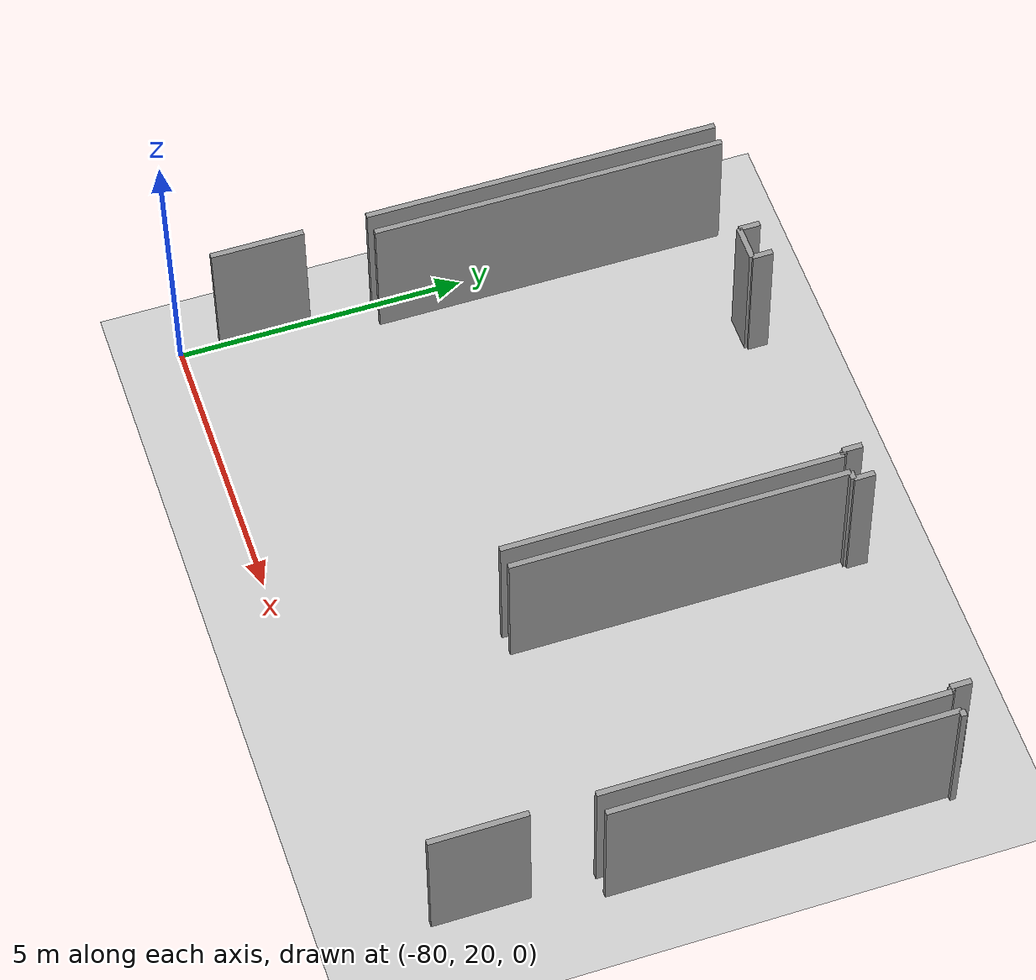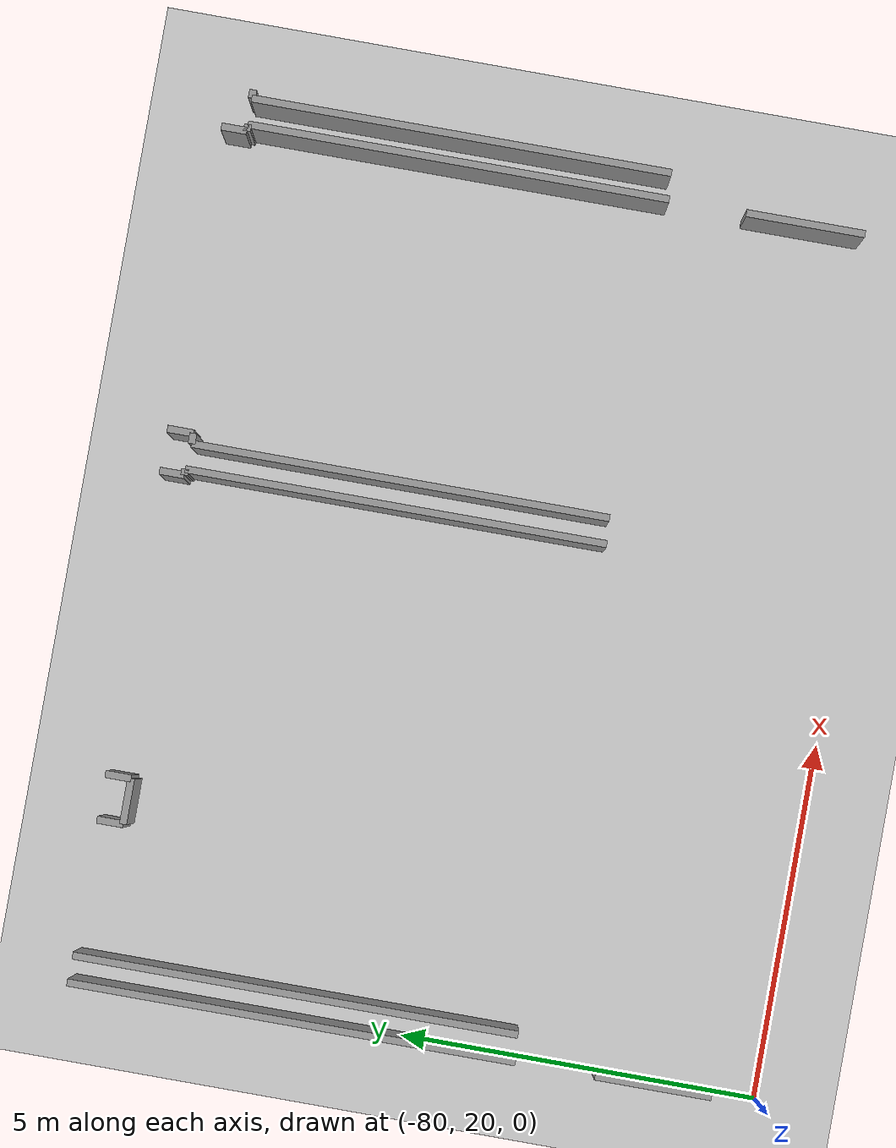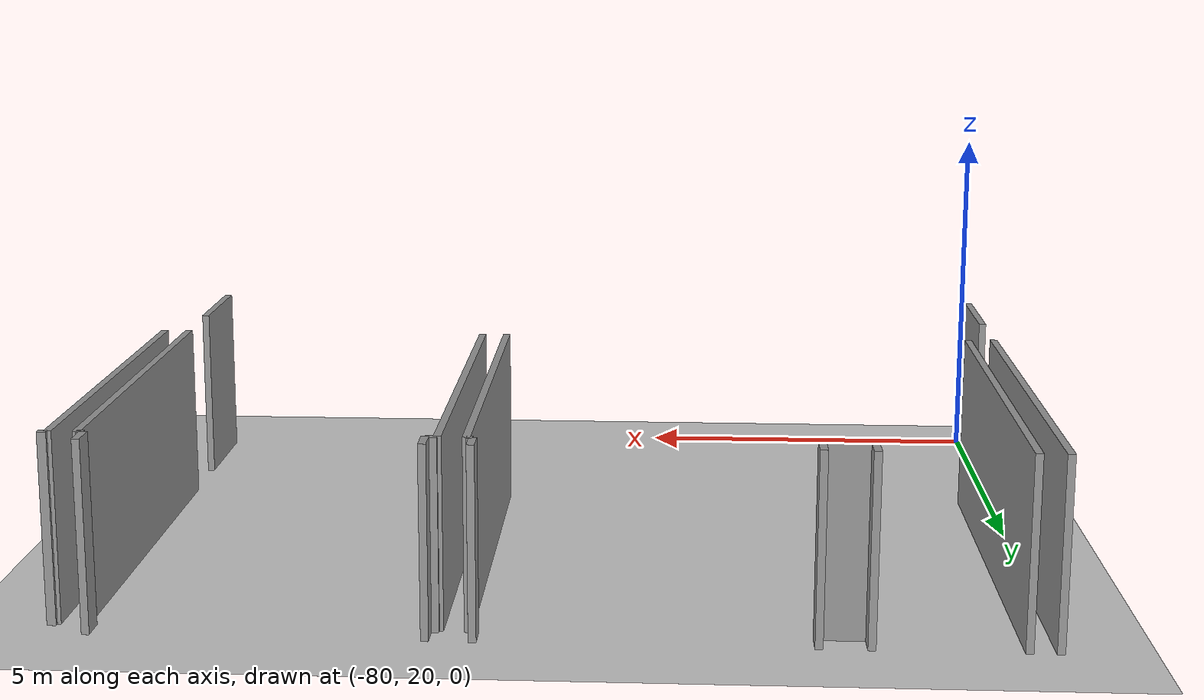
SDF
<sdf version="1.6">
 <world name="default">
  <model name="ground_plane">
   <static>1</static>
   <link name="link">
    <collision name="collision">
     <geometry><plane><normal>0 0 1</normal><size>100 100</size></plane></geometry>
     <surface><friction><ode><mu>100</mu><mu2>50</mu2></ode></friction></surface>
    </collision>
    <visual name="visual">
     <cast_shadows>0</cast_shadows>
     <geometry><plane><normal>0 0 1</normal><size>100 100</size></plane></geometry>
     <material>
      <script><uri>file://media/materials/scripts/gazebo.material</uri><name>Gazebo/Grey</name></script>
     </material>
    </visual>
   </link>
  </model>
  <model name="50010536_PLAN3">
   <static>1</static>
   <link name="Wall_25">
    <collision name="Wall_25_Collision">
     <geometry><box><size>6.22681014507 0.1 2.5</size></box></geometry>
     <pose>3.11340507253 0 1.25 0 0 0</pose>
    </collision>
    <visual name="Wall_25_Visual">
     <pose>3.11340507253 0 1.25 0 0 0</pose>
     <geometry><box><size>6.22681014507 0.1 2.5</size></box></geometry>
     <material>
      <script><uri>file://media/materials/scripts/gazebo.material</uri><name>Gazebo/Grey</name></script>
      <ambient>1 1 1 1</ambient>
     </material>
    </visual>
    <pose>22.5101101482 -0.0200107926229 0 0 0 -1.57079632679</pose>
   </link>
   <link name="Wall_26">
    <collision name="Wall_26_Collision">
     <geometry><box><size>1.61965527093 0.1 2.5</size></box></geometry>
     <pose>0.809827635463 0 1.25 0 0 0</pose>
    </collision>
    <visual name="Wall_26_Visual">
     <pose>0.809827635463 0 1.25 0 0 0</pose>
     <geometry><box><size>1.61965527093 0.1 2.5</size></box></geometry>
     <material>
      <script><uri>file://media/materials/scripts/gazebo.material</uri><name>Gazebo/Grey</name></script>
      <ambient>1 1 1 1</ambient>
     </material>
    </visual>
    <pose>22.5101101482 -7.35046186078 0 0 0 -1.57079632679</pose>
   </link>
   <link name="Wall_30">
    <collision name="Wall_30_Collision">
     <geometry><box><size>6.18871853474 0.1 2.5</size></box></geometry>
     <pose>3.09435926737 0 1.25 0 0 0</pose>
    </collision>
    <visual name="Wall_30_Visual">
     <pose>3.09435926737 0 1.25 0 0 0</pose>
     <geometry><box><size>6.18871853474 0.1 2.5</size></box></geometry>
     <material>
      <script><uri>file://media/materials/scripts/gazebo.material</uri><name>Gazebo/Grey</name></script>
      <ambient>1 1 1 1</ambient>
     </material>
    </visual>
    <pose>22.8846776497 -6.21761736977 0 0 0 1.57079632679</pose>
   </link>
   <link name="Wall_31">
    <collision name="Wall_31_Collision">
     <geometry><box><size>0.363190807225 0.1 2.5</size></box></geometry>
     <pose>0.181595403612 0 1.25 0 0 0</pose>
    </collision>
    <visual name="Wall_31_Visual">
     <pose>0.181595403612 0 1.25 0 0 0</pose>
     <geometry><box><size>0.363190807225 0.1 2.5</size></box></geometry>
     <material>
      <script><uri>file://media/materials/scripts/gazebo.material</uri><name>Gazebo/Grey</name></script>
      <ambient>1 1 1 1</ambient>
     </material>
    </visual>
    <pose>24.7714820811 -0.0288988350316 0 0 0 -1.57079632679</pose>
   </link>
   <link name="Wall_32">
    <collision name="Wall_32_Collision">
     <geometry><box><size>0.635622004254 0.1 2.5</size></box></geometry>
     <pose>0.317811002127 0 1.25 0 0 0</pose>
    </collision>
    <visual name="Wall_32_Visual">
     <pose>0.317811002127 0 1.25 0 0 0</pose>
     <geometry><box><size>0.635622004254 0.1 2.5</size></box></geometry>
     <material>
      <script><uri>file://media/materials/scripts/gazebo.material</uri><name>Gazebo/Grey</name></script>
      <ambient>1 1 1 1</ambient>
     </material>
    </visual>
    <pose>24.7714820811 -0.392089642256 0 0 0 0.0</pose>
   </link>
   <link name="Wall_33">
    <collision name="Wall_33_Collision">
     <geometry><box><size>0.35907691331 0.1 2.5</size></box></geometry>
     <pose>0.179538456655 0 1.25 0 0 0</pose>
    </collision>
    <visual name="Wall_33_Visual">
     <pose>0.179538456655 0 1.25 0 0 0</pose>
     <geometry><box><size>0.35907691331 0.1 2.5</size></box></geometry>
     <material>
      <script><uri>file://media/materials/scripts/gazebo.material</uri><name>Gazebo/Grey</name></script>
      <ambient>1 1 1 1</ambient>
     </material>
    </visual>
    <pose>25.4071040853 -0.392089642256 0 0 0 1.57079632679</pose>
   </link>
   <link name="Wall_34">
    <collision name="Wall_34_Collision">
     <geometry><box><size>0.34417039647 0.1 2.5</size></box></geometry>
     <pose>0.172085198235 0 1.25 0 0 0</pose>
    </collision>
    <visual name="Wall_34_Visual">
     <pose>0.172085198235 0 1.25 0 0 0</pose>
     <geometry><box><size>0.34417039647 0.1 2.5</size></box></geometry>
     <material>
      <script><uri>file://media/materials/scripts/gazebo.material</uri><name>Gazebo/Grey</name></script>
      <ambient>1 1 1 1</ambient>
     </material>
    </visual>
    <pose>29.6225756277 -0.0330127289464 0 0 0 -1.57079632679</pose>
   </link>
   <link name="Wall_35">
    <collision name="Wall_35_Collision">
     <geometry><box><size>0.0817699901597 0.1 2.5</size></box></geometry>
     <pose>0.0408849950798 0 1.25 0 0 0</pose>
    </collision>
    <visual name="Wall_35_Visual">
     <pose>0.0408849950798 0 1.25 0 0 0</pose>
     <geometry><box><size>0.0817699901597 0.1 2.5</size></box></geometry>
     <material>
      <script><uri>file://media/materials/scripts/gazebo.material</uri><name>Gazebo/Grey</name></script>
      <ambient>1 1 1 1</ambient>
     </material>
    </visual>
    <pose>29.6225756277 -0.377183125417 0 0 0 0.0</pose>
   </link>
   <link name="Wall_36">
    <collision name="Wall_36_Collision">
     <geometry><box><size>5.86278132241 0.1 2.5</size></box></geometry>
     <pose>2.93139066121 0 1.25 0 0 0</pose>
    </collision>
    <visual name="Wall_36_Visual">
     <pose>2.93139066121 0 1.25 0 0 0</pose>
     <geometry><box><size>5.86278132241 0.1 2.5</size></box></geometry>
     <material>
      <script><uri>file://media/materials/scripts/gazebo.material</uri><name>Gazebo/Grey</name></script>
      <ambient>1 1 1 1</ambient>
     </material>
    </visual>
    <pose>29.7043456179 -0.377183125417 0 0 0 -1.57079632679</pose>
   </link>
   <link name="Wall_41">
    <collision name="Wall_41_Collision">
     <geometry><box><size>5.81397327239 0.1 2.5</size></box></geometry>
     <pose>2.90698663619 0 1.25 0 0 0</pose>
    </collision>
    <visual name="Wall_41_Visual">
     <pose>2.90698663619 0 1.25 0 0 0</pose>
     <geometry><box><size>5.81397327239 0.1 2.5</size></box></geometry>
     <material>
      <script><uri>file://media/materials/scripts/gazebo.material</uri><name>Gazebo/Grey</name></script>
      <ambient>1 1 1 1</ambient>
     </material>
    </visual>
    <pose>30.0624067549 -6.21431609688 0 0 0 1.57079632679</pose>
   </link>
   <link name="Wall_42">
    <collision name="Wall_42_Collision">
     <geometry><box><size>0.144748119227 0.1 2.5</size></box></geometry>
     <pose>0.0723740596134 0 1.25 0 0 0</pose>
    </collision>
    <visual name="Wall_42_Visual">
     <pose>0.0723740596134 0 1.25 0 0 0</pose>
     <geometry><box><size>0.144748119227 0.1 2.5</size></box></geometry>
     <material>
      <script><uri>file://media/materials/scripts/gazebo.material</uri><name>Gazebo/Grey</name></script>
      <ambient>1 1 1 1</ambient>
     </material>
    </visual>
    <pose>30.0624067549 -0.400342824493 0 0 0 0.0</pose>
   </link>
   <link name="Wall_43">
    <collision name="Wall_43_Collision">
     <geometry><box><size>0.363190807225 0.1 2.5</size></box></geometry>
     <pose>0.181595403612 0 1.25 0 0 0</pose>
    </collision>
    <visual name="Wall_43_Visual">
     <pose>0.181595403612 0 1.25 0 0 0</pose>
     <geometry><box><size>0.363190807225 0.1 2.5</size></box></geometry>
     <material>
      <script><uri>file://media/materials/scripts/gazebo.material</uri><name>Gazebo/Grey</name></script>
      <ambient>1 1 1 1</ambient>
     </material>
    </visual>
    <pose>30.2071548741 -0.400342824493 0 0 0 1.57079632679</pose>
   </link>
   <link name="Wall_44">
    <collision name="Wall_44_Collision">
     <geometry><box><size>0.356004190077 0.1 2.5</size></box></geometry>
     <pose>0.178002095039 0 1.25 0 0 0</pose>
    </collision>
    <visual name="Wall_44_Visual">
     <pose>0.178002095039 0 1.25 0 0 0</pose>
     <geometry><box><size>0.356004190077 0.1 2.5</size></box></geometry>
     <material>
      <script><uri>file://media/materials/scripts/gazebo.material</uri><name>Gazebo/Grey</name></script>
      <ambient>1 1 1 1</ambient>
     </material>
    </visual>
    <pose>34.4157699267 -0.0371520172682 0 0 0 -1.57079632679</pose>
   </link>
   <link name="Wall_45">
    <collision name="Wall_45_Collision">
     <geometry><box><size>0.0904040884995 0.1 2.5</size></box></geometry>
     <pose>0.0452020442498 0 1.25 0 0 0</pose>
    </collision>
    <visual name="Wall_45_Visual">
     <pose>0.0452020442498 0 1.25 0 0 0</pose>
     <geometry><box><size>0.0904040884995 0.1 2.5</size></box></geometry>
     <material>
      <script><uri>file://media/materials/scripts/gazebo.material</uri><name>Gazebo/Grey</name></script>
      <ambient>1 1 1 1</ambient>
     </material>
    </visual>
    <pose>34.4157699267 -0.393156207345 0 0 0 0.0</pose>
   </link>
   <link name="Wall_46">
    <collision name="Wall_46_Collision">
     <geometry><box><size>5.86356854903 0.1 2.5</size></box></geometry>
     <pose>2.93178427451 0 1.25 0 0 0</pose>
    </collision>
    <visual name="Wall_46_Visual">
     <pose>2.93178427451 0 1.25 0 0 0</pose>
     <geometry><box><size>5.86356854903 0.1 2.5</size></box></geometry>
     <material>
      <script><uri>file://media/materials/scripts/gazebo.material</uri><name>Gazebo/Grey</name></script>
      <ambient>1 1 1 1</ambient>
     </material>
    </visual>
    <pose>34.5061740152 -0.393156207345 0 0 0 -1.57079632679</pose>
   </link>
   <link name="Wall_47">
    <collision name="Wall_47_Collision">
     <geometry><box><size>1.6516522236 0.1 2.5</size></box></geometry>
     <pose>0.825826111799 0 1.25 0 0 0</pose>
    </collision>
    <visual name="Wall_47_Visual">
     <pose>0.825826111799 0 1.25 0 0 0</pose>
     <geometry><box><size>1.6516522236 0.1 2.5</size></box></geometry>
     <material>
      <script><uri>file://media/materials/scripts/gazebo.material</uri><name>Gazebo/Grey</name></script>
      <ambient>1 1 1 1</ambient>
     </material>
    </visual>
    <pose>34.5061740152 -7.32938450306 0 0 0 -1.57079632679</pose>
   </link>
   <link name="Wall_51">
    <collision name="Wall_51_Collision">
     <geometry><box><size>5.8442687998 0.1 2.5</size></box></geometry>
     <pose>2.9221343999 0 1.25 0 0 0</pose>
    </collision>
    <visual name="Wall_51_Visual">
     <pose>2.9221343999 0 1.25 0 0 0</pose>
     <geometry><box><size>5.8442687998 0.1 2.5</size></box></geometry>
     <material>
      <script><uri>file://media/materials/scripts/gazebo.material</uri><name>Gazebo/Grey</name></script>
      <ambient>1 1 1 1</ambient>
     </material>
    </visual>
    <pose>34.8680443132 -6.22396597149 0 0 0 1.57079632679</pose>
   </link>
   <link name="Wall_52">
    <collision name="Wall_52_Collision">
     <geometry><box><size>0.118591880138 0.1 2.5</size></box></geometry>
     <pose>0.0592959400692 0 1.25 0 0 0</pose>
    </collision>
    <visual name="Wall_52_Visual">
     <pose>0.0592959400692 0 1.25 0 0 0</pose>
     <geometry><box><size>0.118591880138 0.1 2.5</size></box></geometry>
     <material>
      <script><uri>file://media/materials/scripts/gazebo.material</uri><name>Gazebo/Grey</name></script>
      <ambient>1 1 1 1</ambient>
     </material>
    </visual>
    <pose>34.8680443132 -0.379697171698 0 0 0 0.0</pose>
   </link>
   <pose>-102.5 29.6500539631 0 0 0 0</pose>
  </model>
 </world>
</sdf>
